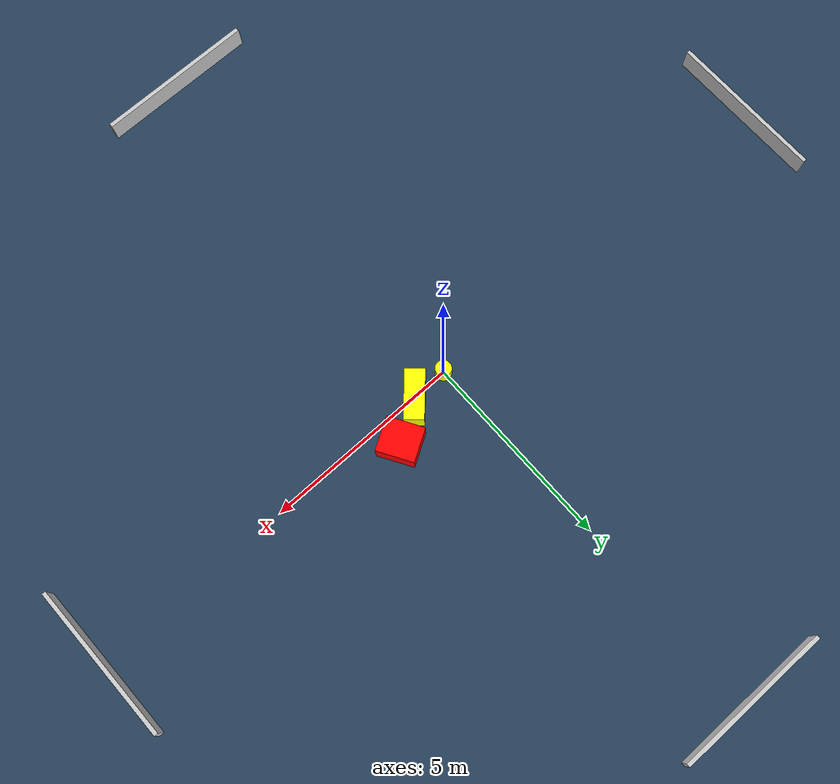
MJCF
<?xml version="1.0" ?>
<mujoco model="generated_environment">
  <option timestep="0.01" integrator="RK4" cone="elliptic"/>
  <default>
    <geom density="1"/>
  </default>
  <asset>
    <texture builtin="gradient" height="3072" name="skybox" rgb1="0.3 0.5 0.7" rgb2="0 0 0" type="skybox" width="512"/>
    <texture builtin="checker" height="300" name="groundplane" rgb1="0.2 0.3 0.4" rgb2="0.1 0.2 0.3" type="2d" width="300"/>
    <material name="groundplane" reflectance="0.2" texrepeat="5 5" texture="groundplane"/>
  </asset>
  <worldbody>
    <light dir="0 0 -1" directional="true" pos="0 0 1.5"/>
    <geom condim="3" friction="0.5 0.005 0.001" material="groundplane" name="floor" pos="0 0 0" size="0 0 0.05" type="plane"/>
    <body name="walls">
      <geom name="wall_1" condim="4" pos="-10.0 0.0 0.3" rgba="0.800000011920929 0.800000011920929 0.800000011920929 1.0" size="0.05 2.0 0.3" type="box"/>
      <geom name="wall_2" condim="4" pos="10.0 0.0 0.3" rgba="0.800000011920929 0.800000011920929 0.800000011920929 1.0" size="0.05 2.0 0.3" type="box"/>
      <geom name="wall_3" condim="4" pos="0.0 -10.0 0.3" rgba="0.800000011920929 0.800000011920929 0.800000011920929 1.0" size="2.0 0.05 0.3" type="box"/>
      <geom name="wall_4" condim="4" pos="0.0 10.0 0.3" rgba="0.800000011920929 0.800000011920929 0.800000011920929 1.0" size="2.0 0.05 0.3" type="box"/>
    </body>
    <body name="robot">
      <joint name="joint_x" type="slide" pos="0 0 0" axis="1 0 0"/>
      <joint name="joint_y" type="slide" pos="0 0 0" axis="0 1 0"/>
      <geom name="robot" type="cylinder" pos="0.0 0.0 0.2" size="0.2 0.2 0.0" mass="5.0" friction="1.0 0.005 0.0001" condim="4" rgba="1.0 1.0 0.0 1.0"/>
    </body>
    <body name="obstacle_1_movable">
      <geom name="obstacle_1_movable" condim="4" pos="0.9437851050789049 0.0495715477848327 0.3" euler="0 0 137.25063669450344" friction="0.0 0.005 0.001" rgba="1.0 1.0 0.0 1.0" size="0.24563351893790325 0.6072927644270343 0.3" type="box" mass="0.1"/>
      <joint type="free"/>
    </body>
    <body name="obstacle_2_static">
      <geom name="obstacle_2_static" condim="4" pos="1.8845423806252386 0.6338896625361855 0.3" euler="0 0 31.020270517032756" friction="0.0 0.005 0.001" rgba="1.0 0.0 0.0 1.0" size="0.4251711669209941 0.46963308995656355 0.3" type="box"/>
    </body>
  </worldbody>
  <actuator>
    <motor name="actuator_x" joint="joint_x" gear="1" ctrlrange="-1 1"/>
    <motor name="actuator_y" joint="joint_y" gear="1" ctrlrange="-1 1"/>
  </actuator>
</mujoco>
